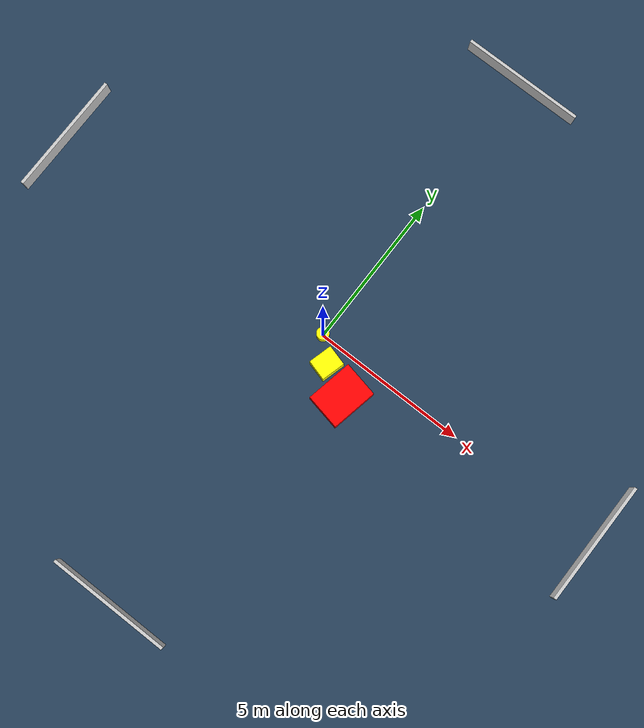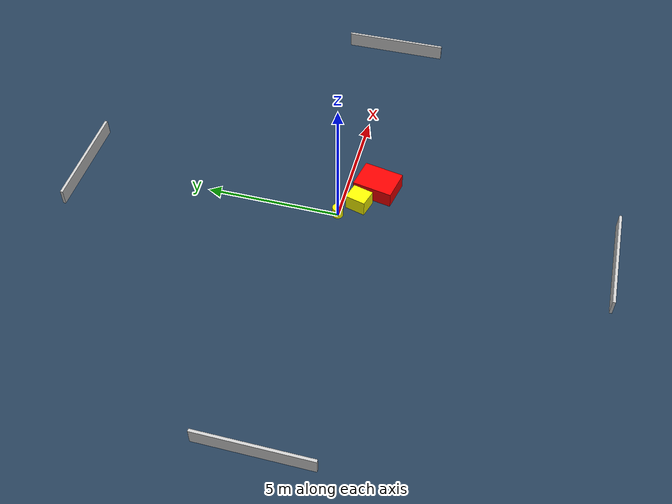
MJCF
<?xml version="1.0" ?>
<mujoco model="generated_environment">
  <option timestep="0.01" integrator="RK4" cone="elliptic"/>
  <default>
    <geom density="1"/>
  </default>
  <asset>
    <texture builtin="gradient" height="3072" name="skybox" rgb1="0.3 0.5 0.7" rgb2="0 0 0" type="skybox" width="512"/>
    <texture builtin="checker" height="300" name="groundplane" rgb1="0.2 0.3 0.4" rgb2="0.1 0.2 0.3" type="2d" width="300"/>
    <material name="groundplane" reflectance="0.2" texrepeat="5 5" texture="groundplane"/>
  </asset>
  <worldbody>
    <light dir="0 0 -1" directional="true" pos="0 0 1.5"/>
    <geom condim="3" friction="0.5 0.005 0.001" material="groundplane" name="floor" pos="0 0 0" size="0 0 0.05" type="plane"/>
    <body name="walls">
      <geom name="wall_1" condim="4" pos="-10.0 0.0 0.3" rgba="0.800000011920929 0.800000011920929 0.800000011920929 1.0" size="0.05 2.0 0.3" type="box"/>
      <geom name="wall_2" condim="4" pos="10.0 0.0 0.3" rgba="0.800000011920929 0.800000011920929 0.800000011920929 1.0" size="0.05 2.0 0.3" type="box"/>
      <geom name="wall_3" condim="4" pos="0.0 -10.0 0.3" rgba="0.800000011920929 0.800000011920929 0.800000011920929 1.0" size="2.0 0.05 0.3" type="box"/>
      <geom name="wall_4" condim="4" pos="0.0 10.0 0.3" rgba="0.800000011920929 0.800000011920929 0.800000011920929 1.0" size="2.0 0.05 0.3" type="box"/>
    </body>
    <body name="robot">
      <joint name="joint_x" type="slide" pos="0 0 0" axis="1 0 0"/>
      <joint name="joint_y" type="slide" pos="0 0 0" axis="0 1 0"/>
      <geom name="robot" type="cylinder" pos="0.0 0.0 0.2" size="0.2 0.2 0.0" mass="5.0" friction="1.0 0.005 0.0001" condim="4" rgba="1.0 1.0 0.0 1.0"/>
    </body>
    <body name="obstacle_1_movable">
      <geom name="obstacle_1_movable" condim="4" pos="0.6498372004981366 -0.644404277802965 0.3" euler="0 0 254.50836510965638" friction="0.0 0.005 0.001" rgba="1.0 1.0 0.0 1.0" size="0.38581230923074405 0.3337139552770546 0.3" type="box" mass="0.1"/>
      <joint type="free"/>
    </body>
    <body name="obstacle_2_static">
      <geom name="obstacle_2_static" condim="4" pos="1.5956995383973749 -1.138218091301743 0.3" euler="0 0 258.73168381015523" friction="0.0 0.005 0.001" rgba="1.0 0.0 0.0 1.0" size="0.7512402800723774 0.5769471278836245 0.3" type="box"/>
    </body>
  </worldbody>
  <actuator>
    <motor name="actuator_x" joint="joint_x" gear="1" ctrlrange="-1 1"/>
    <motor name="actuator_y" joint="joint_y" gear="1" ctrlrange="-1 1"/>
  </actuator>
</mujoco>
